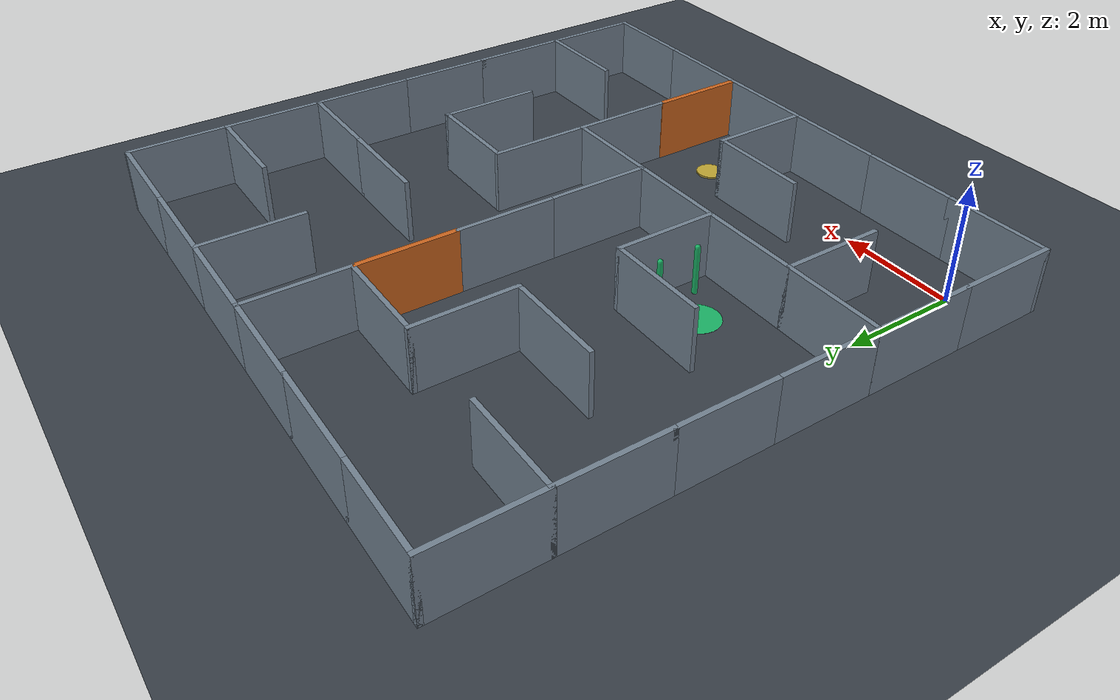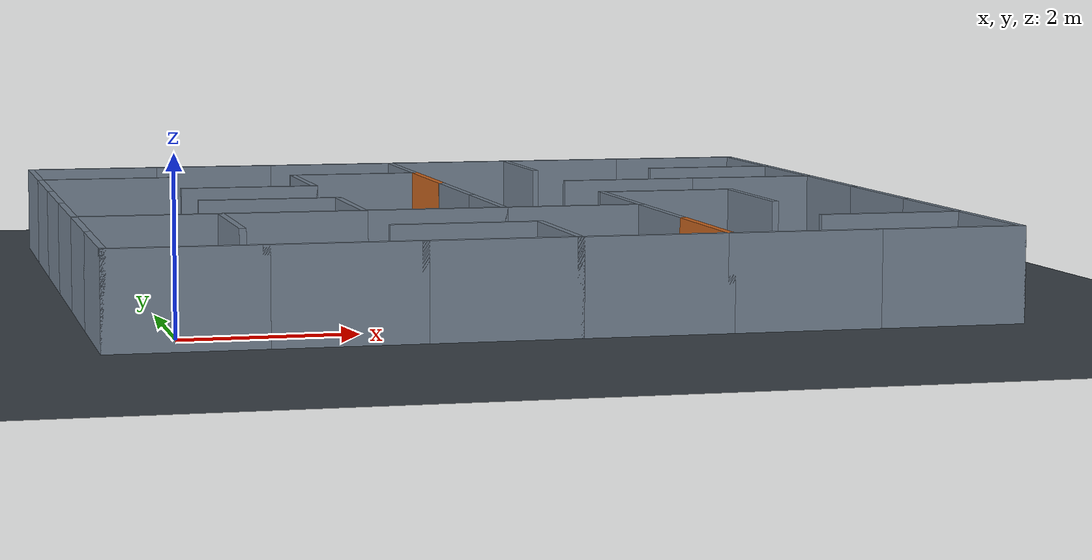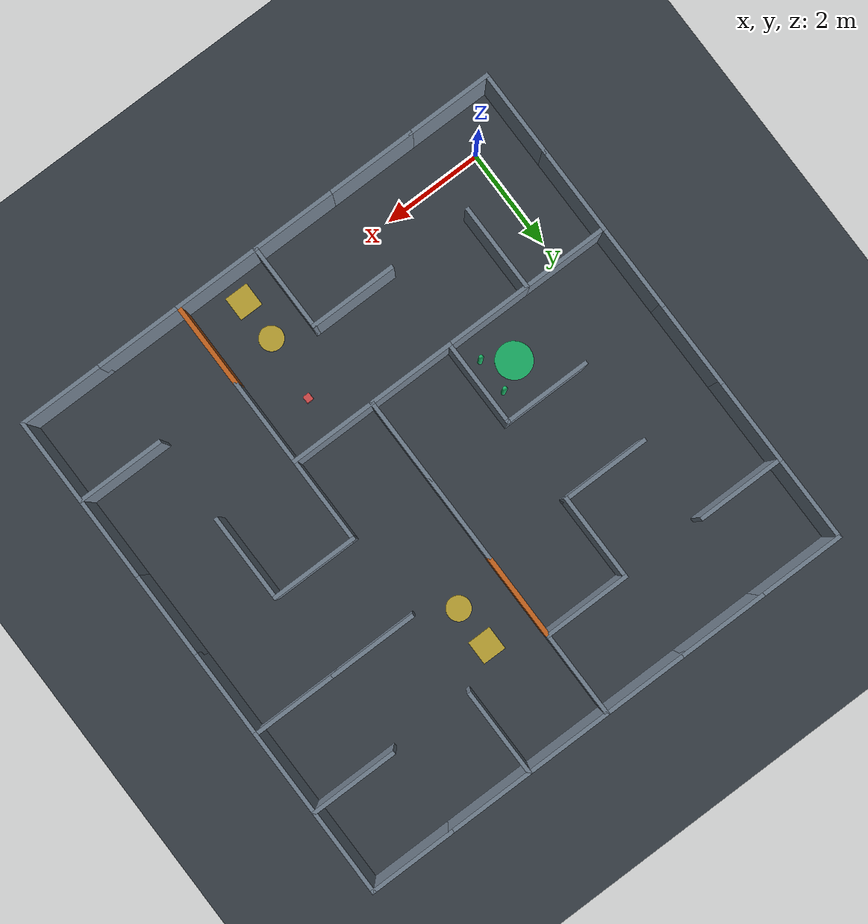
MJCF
<mujoco model="mission7"><compiler angle="radian"/><option timestep=".0005"/><visual><global offwidth="960" offheight="540"/></visual><worldbody><light pos="4 4 9" dir="0 0 -1"/><geom name="floor" type="plane" size="12 12 .05" rgba=".22 .25 .28 1"/><geom name="wall_m7_0" type="box" pos="-0.85 0.0 .55" size="0.04 0.89 .55" rgba=".45 .51 .57 1"/><geom name="wall_m7_1" type="box" pos="0.0 -0.85 .55" size="0.89 0.04 .55" rgba=".45 .51 .57 1"/><geom name="wall_m7_2" type="box" pos="0.85 1.7 .55" size="0.04 0.89 .55" rgba=".45 .51 .57 1"/><geom name="wall_m7_3" type="box" pos="-0.85 1.7 .55" size="0.04 0.89 .55" rgba=".45 .51 .57 1"/><geom name="wall_m7_4" type="box" pos="0.0 2.55 .55" size="0.89 0.04 .55" rgba=".45 .51 .57 1"/><geom name="wall_m7_5" type="box" pos="-0.85 3.4 .55" size="0.04 0.89 .55" rgba=".45 .51 .57 1"/><geom name="wall_m7_6" type="box" pos="-0.85 5.1 .55" size="0.04 0.89 .55" rgba=".45 .51 .57 1"/><geom name="wall_m7_7" type="box" pos="-0.85 6.8 .55" size="0.04 0.89 .55" rgba=".45 .51 .57 1"/><geom name="wall_m7_8" type="box" pos="0.0 7.6499999999999995 .55" size="0.89 0.04 .55" rgba=".45 .51 .57 1"/><geom name="wall_m7_9" type="box" pos="-0.85 8.5 .55" size="0.04 0.89 .55" rgba=".45 .51 .57 1"/><geom name="wall_m7_10" type="box" pos="0.0 9.35 .55" size="0.89 0.04 .55" rgba=".45 .51 .57 1"/><geom name="wall_m7_11" type="box" pos="1.7 -0.85 .55" size="0.89 0.04 .55" rgba=".45 .51 .57 1"/><geom name="wall_m7_12" type="box" pos="1.7 2.55 .55" size="0.89 0.04 .55" rgba=".45 .51 .57 1"/><geom name="wall_m7_13" type="box" pos="2.55 3.4 .55" size="0.04 0.89 .55" rgba=".45 .51 .57 1"/><geom name="wall_m7_14" type="box" pos="1.7 4.25 .55" size="0.89 0.04 .55" rgba=".45 .51 .57 1"/><geom name="wall_m7_15" type="box" pos="1.7 5.949999999999999 .55" size="0.89 0.04 .55" rgba=".45 .51 .57 1"/><geom name="wall_m7_16" type="box" pos="2.55 6.8 .55" size="0.04 0.89 .55" rgba=".45 .51 .57 1"/><geom name="wall_m7_17" type="box" pos="1.7 9.35 .55" size="0.89 0.04 .55" rgba=".45 .51 .57 1"/><geom name="wall_m7_18" type="box" pos="4.25 0.0 .55" size="0.04 0.89 .55" rgba=".45 .51 .57 1"/><geom name="wall_m7_19" type="box" pos="3.4 0.85 .55" size="0.89 0.04 .55" rgba=".45 .51 .57 1"/><geom name="wall_m7_20" type="box" pos="3.4 -0.85 .55" size="0.89 0.04 .55" rgba=".45 .51 .57 1"/><geom name="wall_m7_21" type="box" pos="3.4 2.55 .55" size="0.89 0.04 .55" rgba=".45 .51 .57 1"/><geom name="wall_m7_22" type="box" pos="4.25 3.4 .55" size="0.04 0.89 .55" rgba=".45 .51 .57 1"/><geom name="wall_m7_23" type="box" pos="4.25 5.1 .55" size="0.04 0.89 .55" rgba=".45 .51 .57 1"/><geom name="wall_m7_24" type="box" pos="3.4 7.6499999999999995 .55" size="0.89 0.04 .55" rgba=".45 .51 .57 1"/><geom name="wall_m7_25" type="box" pos="4.25 8.5 .55" size="0.04 0.89 .55" rgba=".45 .51 .57 1"/><geom name="wall_m7_26" type="box" pos="3.4 9.35 .55" size="0.89 0.04 .55" rgba=".45 .51 .57 1"/><geom name="wall_m7_27" type="box" pos="5.1 -0.85 .55" size="0.89 0.04 .55" rgba=".45 .51 .57 1"/><geom name="wall_m7_28" type="box" pos="5.949999999999999 1.7 .55" size="0.04 0.89 .55" rgba=".45 .51 .57 1"/><geom name="wall_m7_29" type="box" pos="5.1 2.55 .55" size="0.89 0.04 .55" rgba=".45 .51 .57 1"/><geom name="wall_m7_30" type="box" pos="5.949999999999999 3.4 .55" size="0.04 0.89 .55" rgba=".45 .51 .57 1"/><geom name="wall_m7_31" type="box" pos="5.949999999999999 8.5 .55" size="0.04 0.89 .55" rgba=".45 .51 .57 1"/><geom name="wall_m7_32" type="box" pos="5.1 9.35 .55" size="0.89 0.04 .55" rgba=".45 .51 .57 1"/><geom name="wall_m7_33" type="box" pos="6.8 -0.85 .55" size="0.89 0.04 .55" rgba=".45 .51 .57 1"/><geom name="wall_m7_34" type="box" pos="7.6499999999999995 3.4 .55" size="0.04 0.89 .55" rgba=".45 .51 .57 1"/><geom name="wall_m7_35" type="box" pos="6.8 4.25 .55" size="0.89 0.04 .55" rgba=".45 .51 .57 1"/><geom name="wall_m7_36" type="box" pos="6.8 5.949999999999999 .55" size="0.89 0.04 .55" rgba=".45 .51 .57 1"/><geom name="wall_m7_37" type="box" pos="6.8 9.35 .55" size="0.89 0.04 .55" rgba=".45 .51 .57 1"/><geom name="wall_m7_38" type="box" pos="9.35 0.0 .55" size="0.04 0.89 .55" rgba=".45 .51 .57 1"/><geom name="wall_m7_39" type="box" pos="8.5 0.85 .55" size="0.89 0.04 .55" rgba=".45 .51 .57 1"/><geom name="wall_m7_40" type="box" pos="8.5 -0.85 .55" size="0.89 0.04 .55" rgba=".45 .51 .57 1"/><geom name="wall_m7_41" type="box" pos="9.35 1.7 .55" size="0.04 0.89 .55" rgba=".45 .51 .57 1"/><geom name="wall_m7_42" type="box" pos="9.35 3.4 .55" size="0.04 0.89 .55" rgba=".45 .51 .57 1"/><geom name="wall_m7_43" type="box" pos="9.35 5.1 .55" size="0.04 0.89 .55" rgba=".45 .51 .57 1"/><geom name="wall_m7_44" type="box" pos="8.5 5.949999999999999 .55" size="0.89 0.04 .55" rgba=".45 .51 .57 1"/><geom name="wall_m7_45" type="box" pos="9.35 6.8 .55" size="0.04 0.89 .55" rgba=".45 .51 .57 1"/><geom name="wall_m7_46" type="box" pos="8.5 7.6499999999999995 .55" size="0.89 0.04 .55" rgba=".45 .51 .57 1"/><geom name="wall_m7_47" type="box" pos="9.35 8.5 .55" size="0.04 0.89 .55" rgba=".45 .51 .57 1"/><geom name="wall_m7_48" type="box" pos="8.5 9.35 .55" size="0.89 0.04 .55" rgba=".45 .51 .57 1"/><body name="gate_0" mocap="true" pos="5.949999999999999 0.0 .55"><geom name="door_0" type="box" size="0.045 0.85 .55" rgba=".8 .4 .12 1"/></body><geom name="plate_0_-1" type="box" size=".24 .24 .015" pos="4.9799999999999995 -0.4200000000000001 .015" rgba=".75 .65 .2 1"/><geom name="plate_0_1" type="cylinder" size=".24 .015" pos="4.9799999999999995 0.4200000000000001 .015" rgba=".75 .65 .2 1"/><body name="gate_1" mocap="true" pos="4.25 6.8 .55"><geom name="door_1" type="box" size="0.045 0.85 .55" rgba=".8 .4 .12 1"/></body><geom name="plate_1_-1" type="box" size=".24 .24 .015" pos="5.22 7.22 .015" rgba=".75 .65 .2 1"/><geom name="plate_1_1" type="cylinder" size=".24 .015" pos="5.22 6.38 .015" rgba=".75 .65 .2 1"/><body name="parcel" pos="5.1 1.7 .075"><freejoint name="parcel_free"/><geom name="parcel_geom" type="box" size=".07 .07 .07" mass=".12" rgba=".85 .3 .3 1"/></body><geom name="drop_zone" type="cylinder" pos="1.7 3.4 .002" size=".36 .002" contype="0" conaffinity="0" rgba=".1 .7 .4 1"/><geom name="goal_post_-1" type="capsule" fromto="2.2199999999999998 3.05 .05 2.2199999999999998 3.05 .85" size=".045" rgba=".1 .7 .4 1"/><geom name="goal_post_1" type="capsule" fromto="2.2199999999999998 3.75 .05 2.2199999999999998 3.75 .85" size=".045" rgba=".1 .7 .4 1"/></worldbody></mujoco>
